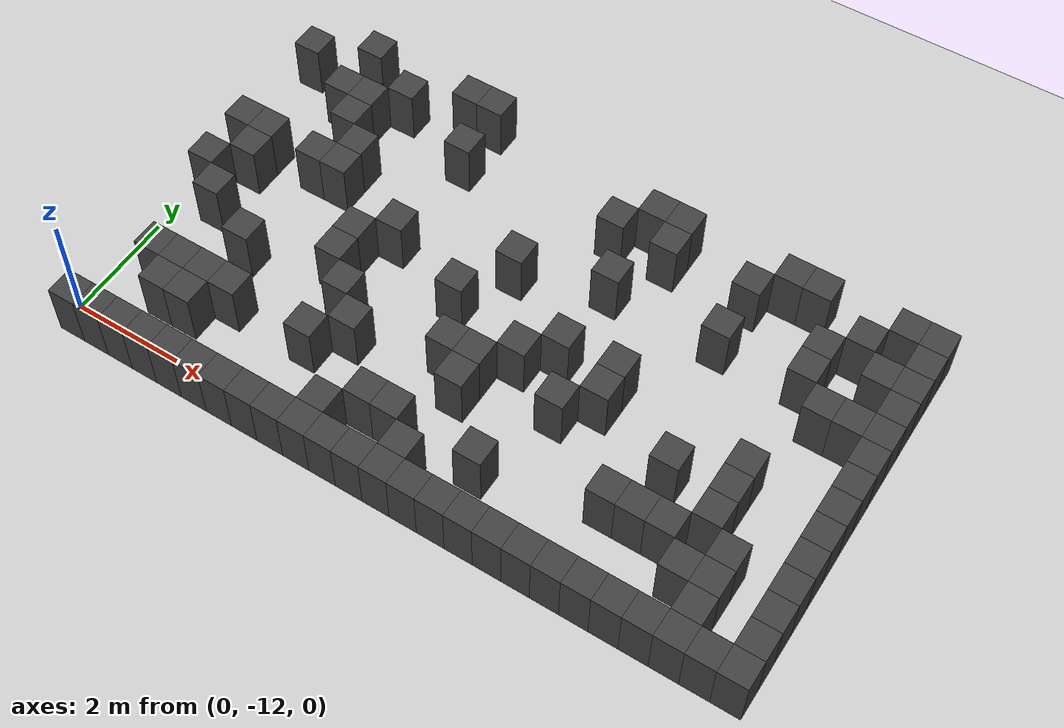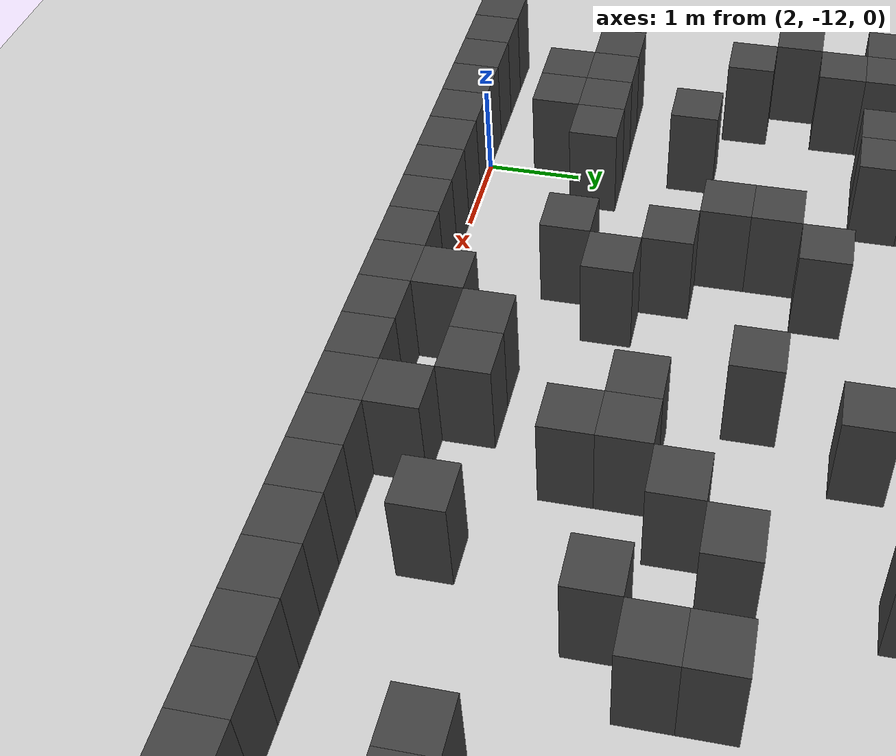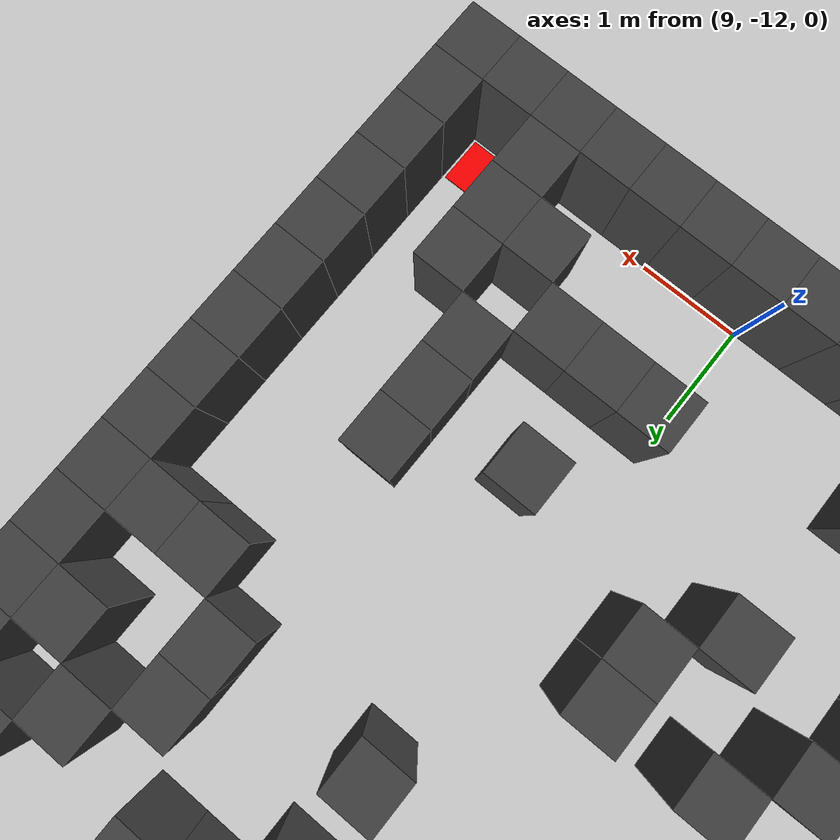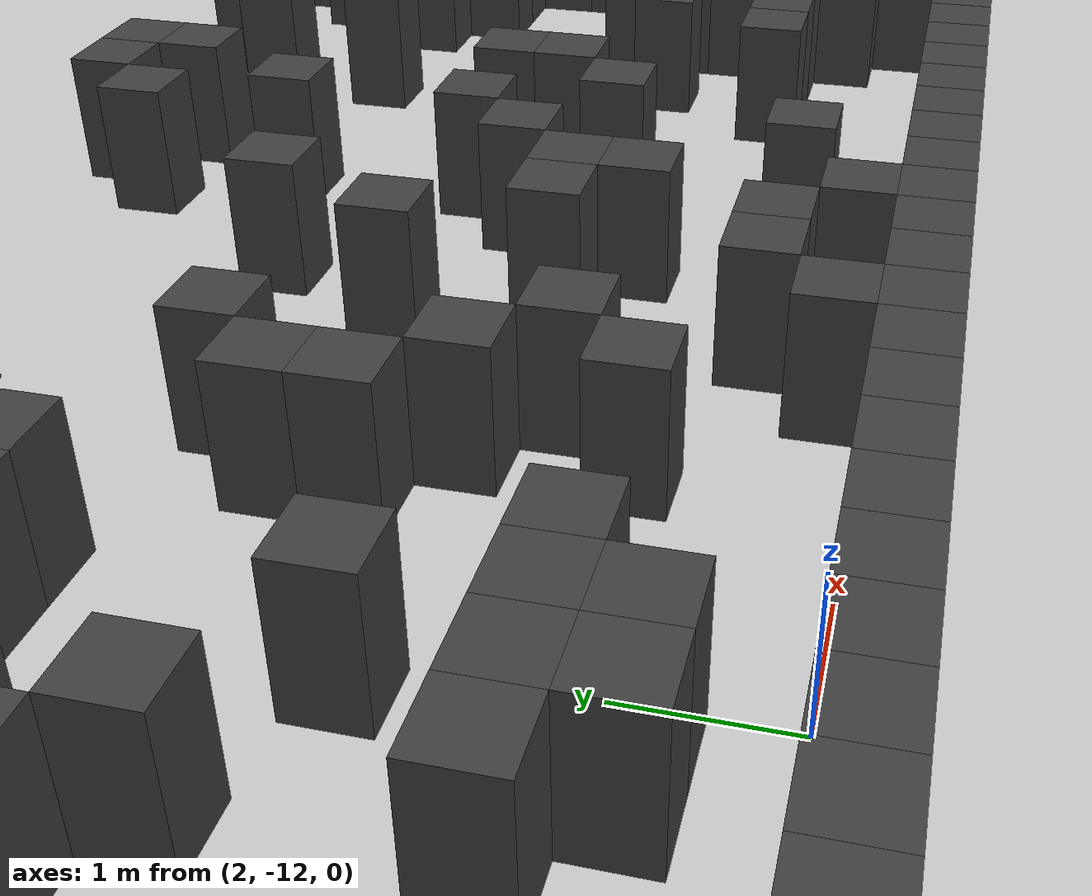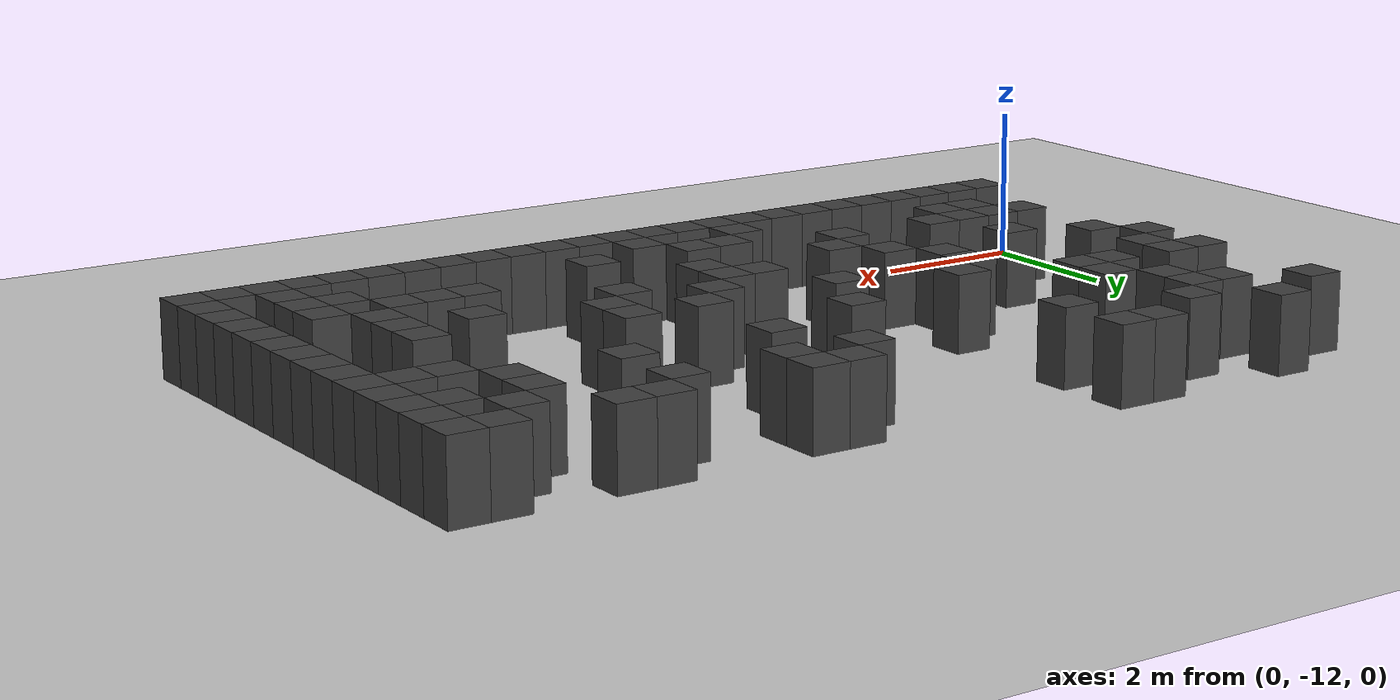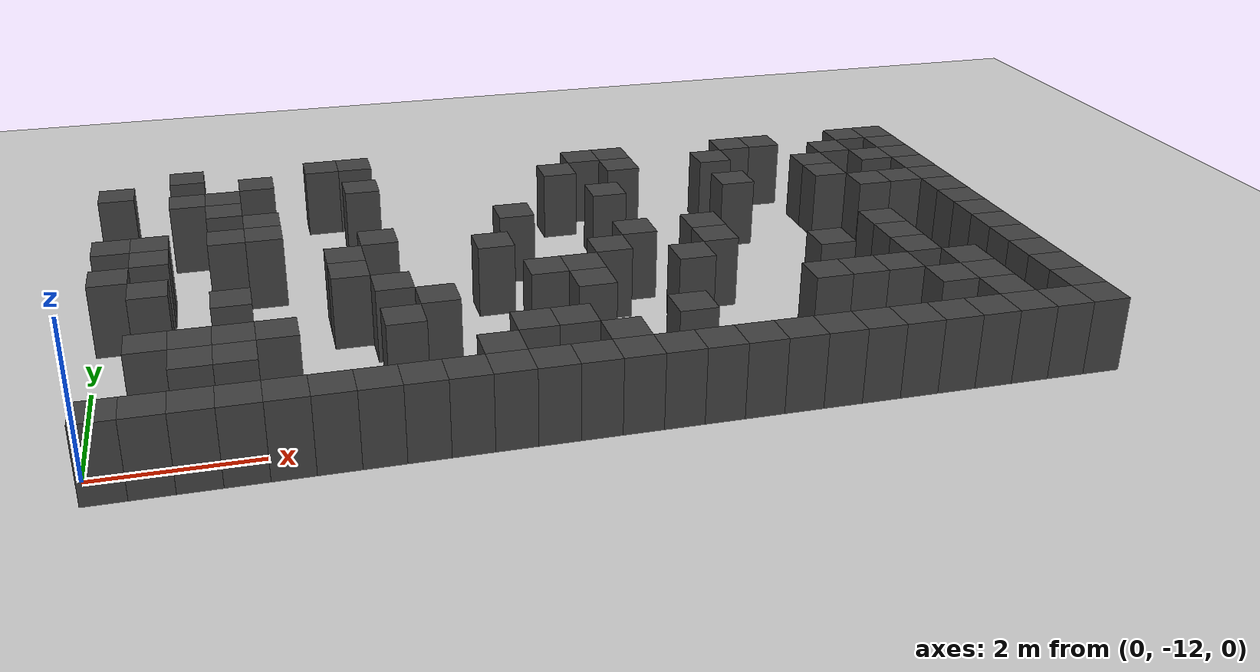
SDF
<sdf version="1.7">
 <world name="map_4225">
  <model name="ground_plane">
   <static>true</static>
   <link name="link">
    <collision name="collision">
     <geometry><plane><normal>0 0 1</normal><size>200 200</size></plane></geometry>
    </collision>
    <visual name="visual">
     <geometry><plane><normal>0 0 1</normal><size>200 200</size></plane></geometry>
     <material><ambient>0.8 0.8 0.8 1</ambient><diffuse>0.8 0.8 0.8 1</diffuse></material>
    </visual>
   </link>
  </model>
  <model name="maze_environment">
   <static>true</static>
   <link name="wall_457">
    <pose>1.250 -5.250 0.500 0 0 0</pose>
    <collision name="col"><geometry><box><size>0.5 0.5 1.0</size></box></geometry></collision>
    <visual name="vis">
     <geometry><box><size>0.5 0.5 1.0</size></box></geometry>
     <material><ambient>0.15 0.15 0.15 1</ambient><diffuse>0.25 0.25 0.25 1</diffuse></material>
    </visual>
   </link>
   <link name="wall_458">
    <pose>3.250 -5.250 0.500 0 0 0</pose>
    <collision name="col"><geometry><box><size>0.5 0.5 1.0</size></box></geometry></collision>
    <visual name="vis">
     <geometry><box><size>0.5 0.5 1.0</size></box></geometry>
     <material><ambient>0.15 0.15 0.15 1</ambient><diffuse>0.25 0.25 0.25 1</diffuse></material>
    </visual>
   </link>
   <link name="wall_459">
    <pose>3.750 -5.250 0.500 0 0 0</pose>
    <collision name="col"><geometry><box><size>0.5 0.5 1.0</size></box></geometry></collision>
    <visual name="vis">
     <geometry><box><size>0.5 0.5 1.0</size></box></geometry>
     <material><ambient>0.15 0.15 0.15 1</ambient><diffuse>0.25 0.25 0.25 1</diffuse></material>
    </visual>
   </link>
   <link name="wall_468">
    <pose>0.250 -5.750 0.500 0 0 0</pose>
    <collision name="col"><geometry><box><size>0.5 0.5 1.0</size></box></geometry></collision>
    <visual name="vis">
     <geometry><box><size>0.5 0.5 1.0</size></box></geometry>
     <material><ambient>0.15 0.15 0.15 1</ambient><diffuse>0.25 0.25 0.25 1</diffuse></material>
    </visual>
   </link>
   <link name="wall_469">
    <pose>2.250 -5.750 0.500 0 0 0</pose>
    <collision name="col"><geometry><box><size>0.5 0.5 1.0</size></box></geometry></collision>
    <visual name="vis">
     <geometry><box><size>0.5 0.5 1.0</size></box></geometry>
     <material><ambient>0.15 0.15 0.15 1</ambient><diffuse>0.25 0.25 0.25 1</diffuse></material>
    </visual>
   </link>
   <link name="wall_470">
    <pose>7.250 -5.750 0.500 0 0 0</pose>
    <collision name="col"><geometry><box><size>0.5 0.5 1.0</size></box></geometry></collision>
    <visual name="vis">
     <geometry><box><size>0.5 0.5 1.0</size></box></geometry>
     <material><ambient>0.15 0.15 0.15 1</ambient><diffuse>0.25 0.25 0.25 1</diffuse></material>
    </visual>
   </link>
   <link name="wall_471">
    <pose>7.750 -5.750 0.500 0 0 0</pose>
    <collision name="col"><geometry><box><size>0.5 0.5 1.0</size></box></geometry></collision>
    <visual name="vis">
     <geometry><box><size>0.5 0.5 1.0</size></box></geometry>
     <material><ambient>0.15 0.15 0.15 1</ambient><diffuse>0.25 0.25 0.25 1</diffuse></material>
    </visual>
   </link>
   <link name="wall_472">
    <pose>9.750 -5.750 0.500 0 0 0</pose>
    <collision name="col"><geometry><box><size>0.5 0.5 1.0</size></box></geometry></collision>
    <visual name="vis">
     <geometry><box><size>0.5 0.5 1.0</size></box></geometry>
     <material><ambient>0.15 0.15 0.15 1</ambient><diffuse>0.25 0.25 0.25 1</diffuse></material>
    </visual>
   </link>
   <link name="wall_473">
    <pose>10.250 -5.750 0.500 0 0 0</pose>
    <collision name="col"><geometry><box><size>0.5 0.5 1.0</size></box></geometry></collision>
    <visual name="vis">
     <geometry><box><size>0.5 0.5 1.0</size></box></geometry>
     <material><ambient>0.15 0.15 0.15 1</ambient><diffuse>0.25 0.25 0.25 1</diffuse></material>
    </visual>
   </link>
   <link name="wall_474">
    <pose>11.750 -5.750 0.500 0 0 0</pose>
    <collision name="col"><geometry><box><size>0.5 0.5 1.0</size></box></geometry></collision>
    <visual name="vis">
     <geometry><box><size>0.5 0.5 1.0</size></box></geometry>
     <material><ambient>0.15 0.15 0.15 1</ambient><diffuse>0.25 0.25 0.25 1</diffuse></material>
    </visual>
   </link>
   <link name="wall_475">
    <pose>12.250 -5.750 0.500 0 0 0</pose>
    <collision name="col"><geometry><box><size>0.5 0.5 1.0</size></box></geometry></collision>
    <visual name="vis">
     <geometry><box><size>0.5 0.5 1.0</size></box></geometry>
     <material><ambient>0.15 0.15 0.15 1</ambient><diffuse>0.25 0.25 0.25 1</diffuse></material>
    </visual>
   </link>
   <link name="wall_484">
    <pose>1.250 -6.250 0.500 0 0 0</pose>
    <collision name="col"><geometry><box><size>0.5 0.5 1.0</size></box></geometry></collision>
    <visual name="vis">
     <geometry><box><size>0.5 0.5 1.0</size></box></geometry>
     <material><ambient>0.15 0.15 0.15 1</ambient><diffuse>0.25 0.25 0.25 1</diffuse></material>
    </visual>
   </link>
   <link name="wall_485">
    <pose>1.750 -6.250 0.500 0 0 0</pose>
    <collision name="col"><geometry><box><size>0.5 0.5 1.0</size></box></geometry></collision>
    <visual name="vis">
     <geometry><box><size>0.5 0.5 1.0</size></box></geometry>
     <material><ambient>0.15 0.15 0.15 1</ambient><diffuse>0.25 0.25 0.25 1</diffuse></material>
    </visual>
   </link>
   <link name="wall_486">
    <pose>3.750 -6.250 0.500 0 0 0</pose>
    <collision name="col"><geometry><box><size>0.5 0.5 1.0</size></box></geometry></collision>
    <visual name="vis">
     <geometry><box><size>0.5 0.5 1.0</size></box></geometry>
     <material><ambient>0.15 0.15 0.15 1</ambient><diffuse>0.25 0.25 0.25 1</diffuse></material>
    </visual>
   </link>
   <link name="wall_487">
    <pose>6.750 -6.250 0.500 0 0 0</pose>
    <collision name="col"><geometry><box><size>0.5 0.5 1.0</size></box></geometry></collision>
    <visual name="vis">
     <geometry><box><size>0.5 0.5 1.0</size></box></geometry>
     <material><ambient>0.15 0.15 0.15 1</ambient><diffuse>0.25 0.25 0.25 1</diffuse></material>
    </visual>
   </link>
   <link name="wall_488">
    <pose>7.750 -6.250 0.500 0 0 0</pose>
    <collision name="col"><geometry><box><size>0.5 0.5 1.0</size></box></geometry></collision>
    <visual name="vis">
     <geometry><box><size>0.5 0.5 1.0</size></box></geometry>
     <material><ambient>0.15 0.15 0.15 1</ambient><diffuse>0.25 0.25 0.25 1</diffuse></material>
    </visual>
   </link>
   <link name="wall_489">
    <pose>9.250 -6.250 0.500 0 0 0</pose>
    <collision name="col"><geometry><box><size>0.5 0.5 1.0</size></box></geometry></collision>
    <visual name="vis">
     <geometry><box><size>0.5 0.5 1.0</size></box></geometry>
     <material><ambient>0.15 0.15 0.15 1</ambient><diffuse>0.25 0.25 0.25 1</diffuse></material>
    </visual>
   </link>
   <link name="wall_490">
    <pose>11.250 -6.250 0.500 0 0 0</pose>
    <collision name="col"><geometry><box><size>0.5 0.5 1.0</size></box></geometry></collision>
    <visual name="vis">
     <geometry><box><size>0.5 0.5 1.0</size></box></geometry>
     <material><ambient>0.15 0.15 0.15 1</ambient><diffuse>0.25 0.25 0.25 1</diffuse></material>
    </visual>
   </link>
   <link name="wall_491">
    <pose>12.250 -6.250 0.500 0 0 0</pose>
    <collision name="col"><geometry><box><size>0.5 0.5 1.0</size></box></geometry></collision>
    <visual name="vis">
     <geometry><box><size>0.5 0.5 1.0</size></box></geometry>
     <material><ambient>0.15 0.15 0.15 1</ambient><diffuse>0.25 0.25 0.25 1</diffuse></material>
    </visual>
   </link>
   <link name="wall_497">
    <pose>1.750 -6.750 0.500 0 0 0</pose>
    <collision name="col"><geometry><box><size>0.5 0.5 1.0</size></box></geometry></collision>
    <visual name="vis">
     <geometry><box><size>0.5 0.5 1.0</size></box></geometry>
     <material><ambient>0.15 0.15 0.15 1</ambient><diffuse>0.25 0.25 0.25 1</diffuse></material>
    </visual>
   </link>
   <link name="wall_498">
    <pose>10.750 -6.750 0.500 0 0 0</pose>
    <collision name="col"><geometry><box><size>0.5 0.5 1.0</size></box></geometry></collision>
    <visual name="vis">
     <geometry><box><size>0.5 0.5 1.0</size></box></geometry>
     <material><ambient>0.15 0.15 0.15 1</ambient><diffuse>0.25 0.25 0.25 1</diffuse></material>
    </visual>
   </link>
   <link name="wall_499">
    <pose>11.750 -6.750 0.500 0 0 0</pose>
    <collision name="col"><geometry><box><size>0.5 0.5 1.0</size></box></geometry></collision>
    <visual name="vis">
     <geometry><box><size>0.5 0.5 1.0</size></box></geometry>
     <material><ambient>0.15 0.15 0.15 1</ambient><diffuse>0.25 0.25 0.25 1</diffuse></material>
    </visual>
   </link>
   <link name="wall_500">
    <pose>12.250 -6.750 0.500 0 0 0</pose>
    <collision name="col"><geometry><box><size>0.5 0.5 1.0</size></box></geometry></collision>
    <visual name="vis">
     <geometry><box><size>0.5 0.5 1.0</size></box></geometry>
     <material><ambient>0.15 0.15 0.15 1</ambient><diffuse>0.25 0.25 0.25 1</diffuse></material>
    </visual>
   </link>
   <link name="wall_503">
    <pose>2.250 -7.250 0.500 0 0 0</pose>
    <collision name="col"><geometry><box><size>0.5 0.5 1.0</size></box></geometry></collision>
    <visual name="vis">
     <geometry><box><size>0.5 0.5 1.0</size></box></geometry>
     <material><ambient>0.15 0.15 0.15 1</ambient><diffuse>0.25 0.25 0.25 1</diffuse></material>
    </visual>
   </link>
   <link name="wall_504">
    <pose>7.250 -7.250 0.500 0 0 0</pose>
    <collision name="col"><geometry><box><size>0.5 0.5 1.0</size></box></geometry></collision>
    <visual name="vis">
     <geometry><box><size>0.5 0.5 1.0</size></box></geometry>
     <material><ambient>0.15 0.15 0.15 1</ambient><diffuse>0.25 0.25 0.25 1</diffuse></material>
    </visual>
   </link>
   <link name="wall_505">
    <pose>9.250 -7.250 0.500 0 0 0</pose>
    <collision name="col"><geometry><box><size>0.5 0.5 1.0</size></box></geometry></collision>
    <visual name="vis">
     <geometry><box><size>0.5 0.5 1.0</size></box></geometry>
     <material><ambient>0.15 0.15 0.15 1</ambient><diffuse>0.25 0.25 0.25 1</diffuse></material>
    </visual>
   </link>
   <link name="wall_506">
    <pose>10.750 -7.250 0.500 0 0 0</pose>
    <collision name="col"><geometry><box><size>0.5 0.5 1.0</size></box></geometry></collision>
    <visual name="vis">
     <geometry><box><size>0.5 0.5 1.0</size></box></geometry>
     <material><ambient>0.15 0.15 0.15 1</ambient><diffuse>0.25 0.25 0.25 1</diffuse></material>
    </visual>
   </link>
   <link name="wall_507">
    <pose>12.250 -7.250 0.500 0 0 0</pose>
    <collision name="col"><geometry><box><size>0.5 0.5 1.0</size></box></geometry></collision>
    <visual name="vis">
     <geometry><box><size>0.5 0.5 1.0</size></box></geometry>
     <material><ambient>0.15 0.15 0.15 1</ambient><diffuse>0.25 0.25 0.25 1</diffuse></material>
    </visual>
   </link>
   <link name="wall_512">
    <pose>0.250 -7.750 0.500 0 0 0</pose>
    <collision name="col"><geometry><box><size>0.5 0.5 1.0</size></box></geometry></collision>
    <visual name="vis">
     <geometry><box><size>0.5 0.5 1.0</size></box></geometry>
     <material><ambient>0.15 0.15 0.15 1</ambient><diffuse>0.25 0.25 0.25 1</diffuse></material>
    </visual>
   </link>
   <link name="wall_513">
    <pose>0.750 -7.750 0.500 0 0 0</pose>
    <collision name="col"><geometry><box><size>0.5 0.5 1.0</size></box></geometry></collision>
    <visual name="vis">
     <geometry><box><size>0.5 0.5 1.0</size></box></geometry>
     <material><ambient>0.15 0.15 0.15 1</ambient><diffuse>0.25 0.25 0.25 1</diffuse></material>
    </visual>
   </link>
   <link name="wall_514">
    <pose>1.750 -7.750 0.500 0 0 0</pose>
    <collision name="col"><geometry><box><size>0.5 0.5 1.0</size></box></geometry></collision>
    <visual name="vis">
     <geometry><box><size>0.5 0.5 1.0</size></box></geometry>
     <material><ambient>0.15 0.15 0.15 1</ambient><diffuse>0.25 0.25 0.25 1</diffuse></material>
    </visual>
   </link>
   <link name="wall_515">
    <pose>2.250 -7.750 0.500 0 0 0</pose>
    <collision name="col"><geometry><box><size>0.5 0.5 1.0</size></box></geometry></collision>
    <visual name="vis">
     <geometry><box><size>0.5 0.5 1.0</size></box></geometry>
     <material><ambient>0.15 0.15 0.15 1</ambient><diffuse>0.25 0.25 0.25 1</diffuse></material>
    </visual>
   </link>
   <link name="wall_516">
    <pose>5.750 -7.750 0.500 0 0 0</pose>
    <collision name="col"><geometry><box><size>0.5 0.5 1.0</size></box></geometry></collision>
    <visual name="vis">
     <geometry><box><size>0.5 0.5 1.0</size></box></geometry>
     <material><ambient>0.15 0.15 0.15 1</ambient><diffuse>0.25 0.25 0.25 1</diffuse></material>
    </visual>
   </link>
   <link name="wall_517">
    <pose>11.250 -7.750 0.500 0 0 0</pose>
    <collision name="col"><geometry><box><size>0.5 0.5 1.0</size></box></geometry></collision>
    <visual name="vis">
     <geometry><box><size>0.5 0.5 1.0</size></box></geometry>
     <material><ambient>0.15 0.15 0.15 1</ambient><diffuse>0.25 0.25 0.25 1</diffuse></material>
    </visual>
   </link>
   <link name="wall_518">
    <pose>11.750 -7.750 0.500 0 0 0</pose>
    <collision name="col"><geometry><box><size>0.5 0.5 1.0</size></box></geometry></collision>
    <visual name="vis">
     <geometry><box><size>0.5 0.5 1.0</size></box></geometry>
     <material><ambient>0.15 0.15 0.15 1</ambient><diffuse>0.25 0.25 0.25 1</diffuse></material>
    </visual>
   </link>
   <link name="wall_519">
    <pose>12.250 -7.750 0.500 0 0 0</pose>
    <collision name="col"><geometry><box><size>0.5 0.5 1.0</size></box></geometry></collision>
    <visual name="vis">
     <geometry><box><size>0.5 0.5 1.0</size></box></geometry>
     <material><ambient>0.15 0.15 0.15 1</ambient><diffuse>0.25 0.25 0.25 1</diffuse></material>
    </visual>
   </link>
   <link name="wall_526">
    <pose>0.750 -8.250 0.500 0 0 0</pose>
    <collision name="col"><geometry><box><size>0.5 0.5 1.0</size></box></geometry></collision>
    <visual name="vis">
     <geometry><box><size>0.5 0.5 1.0</size></box></geometry>
     <material><ambient>0.15 0.15 0.15 1</ambient><diffuse>0.25 0.25 0.25 1</diffuse></material>
    </visual>
   </link>
   <link name="wall_527">
    <pose>3.750 -8.250 0.500 0 0 0</pose>
    <collision name="col"><geometry><box><size>0.5 0.5 1.0</size></box></geometry></collision>
    <visual name="vis">
     <geometry><box><size>0.5 0.5 1.0</size></box></geometry>
     <material><ambient>0.15 0.15 0.15 1</ambient><diffuse>0.25 0.25 0.25 1</diffuse></material>
    </visual>
   </link>
   <link name="wall_528">
    <pose>12.250 -8.250 0.500 0 0 0</pose>
    <collision name="col"><geometry><box><size>0.5 0.5 1.0</size></box></geometry></collision>
    <visual name="vis">
     <geometry><box><size>0.5 0.5 1.0</size></box></geometry>
     <material><ambient>0.15 0.15 0.15 1</ambient><diffuse>0.25 0.25 0.25 1</diffuse></material>
    </visual>
   </link>
   <link name="wall_535">
    <pose>0.250 -8.750 0.500 0 0 0</pose>
    <collision name="col"><geometry><box><size>0.5 0.5 1.0</size></box></geometry></collision>
    <visual name="vis">
     <geometry><box><size>0.5 0.5 1.0</size></box></geometry>
     <material><ambient>0.15 0.15 0.15 1</ambient><diffuse>0.25 0.25 0.25 1</diffuse></material>
    </visual>
   </link>
   <link name="wall_536">
    <pose>3.250 -8.750 0.500 0 0 0</pose>
    <collision name="col"><geometry><box><size>0.5 0.5 1.0</size></box></geometry></collision>
    <visual name="vis">
     <geometry><box><size>0.5 0.5 1.0</size></box></geometry>
     <material><ambient>0.15 0.15 0.15 1</ambient><diffuse>0.25 0.25 0.25 1</diffuse></material>
    </visual>
   </link>
   <link name="wall_537">
    <pose>5.250 -8.750 0.500 0 0 0</pose>
    <collision name="col"><geometry><box><size>0.5 0.5 1.0</size></box></geometry></collision>
    <visual name="vis">
     <geometry><box><size>0.5 0.5 1.0</size></box></geometry>
     <material><ambient>0.15 0.15 0.15 1</ambient><diffuse>0.25 0.25 0.25 1</diffuse></material>
    </visual>
   </link>
   <link name="wall_538">
    <pose>7.250 -8.750 0.500 0 0 0</pose>
    <collision name="col"><geometry><box><size>0.5 0.5 1.0</size></box></geometry></collision>
    <visual name="vis">
     <geometry><box><size>0.5 0.5 1.0</size></box></geometry>
     <material><ambient>0.15 0.15 0.15 1</ambient><diffuse>0.25 0.25 0.25 1</diffuse></material>
    </visual>
   </link>
   <link name="wall_539">
    <pose>8.250 -8.750 0.500 0 0 0</pose>
    <collision name="col"><geometry><box><size>0.5 0.5 1.0</size></box></geometry></collision>
    <visual name="vis">
     <geometry><box><size>0.5 0.5 1.0</size></box></geometry>
     <material><ambient>0.15 0.15 0.15 1</ambient><diffuse>0.25 0.25 0.25 1</diffuse></material>
    </visual>
   </link>
   <link name="wall_540">
    <pose>12.250 -8.750 0.500 0 0 0</pose>
    <collision name="col"><geometry><box><size>0.5 0.5 1.0</size></box></geometry></collision>
    <visual name="vis">
     <geometry><box><size>0.5 0.5 1.0</size></box></geometry>
     <material><ambient>0.15 0.15 0.15 1</ambient><diffuse>0.25 0.25 0.25 1</diffuse></material>
    </visual>
   </link>
   <link name="wall_550">
    <pose>0.750 -9.250 0.500 0 0 0</pose>
    <collision name="col"><geometry><box><size>0.5 0.5 1.0</size></box></geometry></collision>
    <visual name="vis">
     <geometry><box><size>0.5 0.5 1.0</size></box></geometry>
     <material><ambient>0.15 0.15 0.15 1</ambient><diffuse>0.25 0.25 0.25 1</diffuse></material>
    </visual>
   </link>
   <link name="wall_551">
    <pose>3.250 -9.250 0.500 0 0 0</pose>
    <collision name="col"><geometry><box><size>0.5 0.5 1.0</size></box></geometry></collision>
    <visual name="vis">
     <geometry><box><size>0.5 0.5 1.0</size></box></geometry>
     <material><ambient>0.15 0.15 0.15 1</ambient><diffuse>0.25 0.25 0.25 1</diffuse></material>
    </visual>
   </link>
   <link name="wall_552">
    <pose>6.750 -9.250 0.500 0 0 0</pose>
    <collision name="col"><geometry><box><size>0.5 0.5 1.0</size></box></geometry></collision>
    <visual name="vis">
     <geometry><box><size>0.5 0.5 1.0</size></box></geometry>
     <material><ambient>0.15 0.15 0.15 1</ambient><diffuse>0.25 0.25 0.25 1</diffuse></material>
    </visual>
   </link>
   <link name="wall_553">
    <pose>8.250 -9.250 0.500 0 0 0</pose>
    <collision name="col"><geometry><box><size>0.5 0.5 1.0</size></box></geometry></collision>
    <visual name="vis">
     <geometry><box><size>0.5 0.5 1.0</size></box></geometry>
     <material><ambient>0.15 0.15 0.15 1</ambient><diffuse>0.25 0.25 0.25 1</diffuse></material>
    </visual>
   </link>
   <link name="wall_554">
    <pose>10.750 -9.250 0.500 0 0 0</pose>
    <collision name="col"><geometry><box><size>0.5 0.5 1.0</size></box></geometry></collision>
    <visual name="vis">
     <geometry><box><size>0.5 0.5 1.0</size></box></geometry>
     <material><ambient>0.15 0.15 0.15 1</ambient><diffuse>0.25 0.25 0.25 1</diffuse></material>
    </visual>
   </link>
   <link name="wall_555">
    <pose>12.250 -9.250 0.500 0 0 0</pose>
    <collision name="col"><geometry><box><size>0.5 0.5 1.0</size></box></geometry></collision>
    <visual name="vis">
     <geometry><box><size>0.5 0.5 1.0</size></box></geometry>
     <material><ambient>0.15 0.15 0.15 1</ambient><diffuse>0.25 0.25 0.25 1</diffuse></material>
    </visual>
   </link>
   <link name="wall_562">
    <pose>1.750 -9.750 0.500 0 0 0</pose>
    <collision name="col"><geometry><box><size>0.5 0.5 1.0</size></box></geometry></collision>
    <visual name="vis">
     <geometry><box><size>0.5 0.5 1.0</size></box></geometry>
     <material><ambient>0.15 0.15 0.15 1</ambient><diffuse>0.25 0.25 0.25 1</diffuse></material>
    </visual>
   </link>
   <link name="wall_563">
    <pose>3.750 -9.750 0.500 0 0 0</pose>
    <collision name="col"><geometry><box><size>0.5 0.5 1.0</size></box></geometry></collision>
    <visual name="vis">
     <geometry><box><size>0.5 0.5 1.0</size></box></geometry>
     <material><ambient>0.15 0.15 0.15 1</ambient><diffuse>0.25 0.25 0.25 1</diffuse></material>
    </visual>
   </link>
   <link name="wall_564">
    <pose>5.750 -9.750 0.500 0 0 0</pose>
    <collision name="col"><geometry><box><size>0.5 0.5 1.0</size></box></geometry></collision>
    <visual name="vis">
     <geometry><box><size>0.5 0.5 1.0</size></box></geometry>
     <material><ambient>0.15 0.15 0.15 1</ambient><diffuse>0.25 0.25 0.25 1</diffuse></material>
    </visual>
   </link>
   <link name="wall_565">
    <pose>6.250 -9.750 0.500 0 0 0</pose>
    <collision name="col"><geometry><box><size>0.5 0.5 1.0</size></box></geometry></collision>
    <visual name="vis">
     <geometry><box><size>0.5 0.5 1.0</size></box></geometry>
     <material><ambient>0.15 0.15 0.15 1</ambient><diffuse>0.25 0.25 0.25 1</diffuse></material>
    </visual>
   </link>
   <link name="wall_566">
    <pose>7.750 -9.750 0.500 0 0 0</pose>
    <collision name="col"><geometry><box><size>0.5 0.5 1.0</size></box></geometry></collision>
    <visual name="vis">
     <geometry><box><size>0.5 0.5 1.0</size></box></geometry>
     <material><ambient>0.15 0.15 0.15 1</ambient><diffuse>0.25 0.25 0.25 1</diffuse></material>
    </visual>
   </link>
   <link name="wall_567">
    <pose>9.750 -9.750 0.500 0 0 0</pose>
    <collision name="col"><geometry><box><size>0.5 0.5 1.0</size></box></geometry></collision>
    <visual name="vis">
     <geometry><box><size>0.5 0.5 1.0</size></box></geometry>
     <material><ambient>0.15 0.15 0.15 1</ambient><diffuse>0.25 0.25 0.25 1</diffuse></material>
    </visual>
   </link>
   <link name="wall_568">
    <pose>10.750 -9.750 0.500 0 0 0</pose>
    <collision name="col"><geometry><box><size>0.5 0.5 1.0</size></box></geometry></collision>
    <visual name="vis">
     <geometry><box><size>0.5 0.5 1.0</size></box></geometry>
     <material><ambient>0.15 0.15 0.15 1</ambient><diffuse>0.25 0.25 0.25 1</diffuse></material>
    </visual>
   </link>
   <link name="wall_569">
    <pose>12.250 -9.750 0.500 0 0 0</pose>
    <collision name="col"><geometry><box><size>0.5 0.5 1.0</size></box></geometry></collision>
    <visual name="vis">
     <geometry><box><size>0.5 0.5 1.0</size></box></geometry>
     <material><ambient>0.15 0.15 0.15 1</ambient><diffuse>0.25 0.25 0.25 1</diffuse></material>
    </visual>
   </link>
   <link name="wall_574">
    <pose>4.250 -10.250 0.500 0 0 0</pose>
    <collision name="col"><geometry><box><size>0.5 0.5 1.0</size></box></geometry></collision>
    <visual name="vis">
     <geometry><box><size>0.5 0.5 1.0</size></box></geometry>
     <material><ambient>0.15 0.15 0.15 1</ambient><diffuse>0.25 0.25 0.25 1</diffuse></material>
    </visual>
   </link>
   <link name="wall_575">
    <pose>6.250 -10.250 0.500 0 0 0</pose>
    <collision name="col"><geometry><box><size>0.5 0.5 1.0</size></box></geometry></collision>
    <visual name="vis">
     <geometry><box><size>0.5 0.5 1.0</size></box></geometry>
     <material><ambient>0.15 0.15 0.15 1</ambient><diffuse>0.25 0.25 0.25 1</diffuse></material>
    </visual>
   </link>
   <link name="wall_576">
    <pose>10.750 -10.250 0.500 0 0 0</pose>
    <collision name="col"><geometry><box><size>0.5 0.5 1.0</size></box></geometry></collision>
    <visual name="vis">
     <geometry><box><size>0.5 0.5 1.0</size></box></geometry>
     <material><ambient>0.15 0.15 0.15 1</ambient><diffuse>0.25 0.25 0.25 1</diffuse></material>
    </visual>
   </link>
   <link name="wall_577">
    <pose>12.250 -10.250 0.500 0 0 0</pose>
    <collision name="col"><geometry><box><size>0.5 0.5 1.0</size></box></geometry></collision>
    <visual name="vis">
     <geometry><box><size>0.5 0.5 1.0</size></box></geometry>
     <material><ambient>0.15 0.15 0.15 1</ambient><diffuse>0.25 0.25 0.25 1</diffuse></material>
    </visual>
   </link>
   <link name="wall_583">
    <pose>0.750 -10.750 0.500 0 0 0</pose>
    <collision name="col"><geometry><box><size>0.5 0.5 1.0</size></box></geometry></collision>
    <visual name="vis">
     <geometry><box><size>0.5 0.5 1.0</size></box></geometry>
     <material><ambient>0.15 0.15 0.15 1</ambient><diffuse>0.25 0.25 0.25 1</diffuse></material>
    </visual>
   </link>
   <link name="wall_584">
    <pose>1.250 -10.750 0.500 0 0 0</pose>
    <collision name="col"><geometry><box><size>0.5 0.5 1.0</size></box></geometry></collision>
    <visual name="vis">
     <geometry><box><size>0.5 0.5 1.0</size></box></geometry>
     <material><ambient>0.15 0.15 0.15 1</ambient><diffuse>0.25 0.25 0.25 1</diffuse></material>
    </visual>
   </link>
   <link name="wall_585">
    <pose>1.750 -10.750 0.500 0 0 0</pose>
    <collision name="col"><geometry><box><size>0.5 0.5 1.0</size></box></geometry></collision>
    <visual name="vis">
     <geometry><box><size>0.5 0.5 1.0</size></box></geometry>
     <material><ambient>0.15 0.15 0.15 1</ambient><diffuse>0.25 0.25 0.25 1</diffuse></material>
    </visual>
   </link>
   <link name="wall_586">
    <pose>2.250 -10.750 0.500 0 0 0</pose>
    <collision name="col"><geometry><box><size>0.5 0.5 1.0</size></box></geometry></collision>
    <visual name="vis">
     <geometry><box><size>0.5 0.5 1.0</size></box></geometry>
     <material><ambient>0.15 0.15 0.15 1</ambient><diffuse>0.25 0.25 0.25 1</diffuse></material>
    </visual>
   </link>
   <link name="wall_587">
    <pose>3.750 -10.750 0.500 0 0 0</pose>
    <collision name="col"><geometry><box><size>0.5 0.5 1.0</size></box></geometry></collision>
    <visual name="vis">
     <geometry><box><size>0.5 0.5 1.0</size></box></geometry>
     <material><ambient>0.15 0.15 0.15 1</ambient><diffuse>0.25 0.25 0.25 1</diffuse></material>
    </visual>
   </link>
   <link name="wall_588">
    <pose>9.250 -10.750 0.500 0 0 0</pose>
    <collision name="col"><geometry><box><size>0.5 0.5 1.0</size></box></geometry></collision>
    <visual name="vis">
     <geometry><box><size>0.5 0.5 1.0</size></box></geometry>
     <material><ambient>0.15 0.15 0.15 1</ambient><diffuse>0.25 0.25 0.25 1</diffuse></material>
    </visual>
   </link>
   <link name="wall_589">
    <pose>9.750 -10.750 0.500 0 0 0</pose>
    <collision name="col"><geometry><box><size>0.5 0.5 1.0</size></box></geometry></collision>
    <visual name="vis">
     <geometry><box><size>0.5 0.5 1.0</size></box></geometry>
     <material><ambient>0.15 0.15 0.15 1</ambient><diffuse>0.25 0.25 0.25 1</diffuse></material>
    </visual>
   </link>
   <link name="wall_590">
    <pose>10.250 -10.750 0.500 0 0 0</pose>
    <collision name="col"><geometry><box><size>0.5 0.5 1.0</size></box></geometry></collision>
    <visual name="vis">
     <geometry><box><size>0.5 0.5 1.0</size></box></geometry>
     <material><ambient>0.15 0.15 0.15 1</ambient><diffuse>0.25 0.25 0.25 1</diffuse></material>
    </visual>
   </link>
   <link name="wall_591">
    <pose>11.250 -10.750 0.500 0 0 0</pose>
    <collision name="col"><geometry><box><size>0.5 0.5 1.0</size></box></geometry></collision>
    <visual name="vis">
     <geometry><box><size>0.5 0.5 1.0</size></box></geometry>
     <material><ambient>0.15 0.15 0.15 1</ambient><diffuse>0.25 0.25 0.25 1</diffuse></material>
    </visual>
   </link>
   <link name="wall_592">
    <pose>12.250 -10.750 0.500 0 0 0</pose>
    <collision name="col"><geometry><box><size>0.5 0.5 1.0</size></box></geometry></collision>
    <visual name="vis">
     <geometry><box><size>0.5 0.5 1.0</size></box></geometry>
     <material><ambient>0.15 0.15 0.15 1</ambient><diffuse>0.25 0.25 0.25 1</diffuse></material>
    </visual>
   </link>
   <link name="wall_595">
    <pose>1.250 -11.250 0.500 0 0 0</pose>
    <collision name="col"><geometry><box><size>0.5 0.5 1.0</size></box></geometry></collision>
    <visual name="vis">
     <geometry><box><size>0.5 0.5 1.0</size></box></geometry>
     <material><ambient>0.15 0.15 0.15 1</ambient><diffuse>0.25 0.25 0.25 1</diffuse></material>
    </visual>
   </link>
   <link name="wall_596">
    <pose>1.750 -11.250 0.500 0 0 0</pose>
    <collision name="col"><geometry><box><size>0.5 0.5 1.0</size></box></geometry></collision>
    <visual name="vis">
     <geometry><box><size>0.5 0.5 1.0</size></box></geometry>
     <material><ambient>0.15 0.15 0.15 1</ambient><diffuse>0.25 0.25 0.25 1</diffuse></material>
    </visual>
   </link>
   <link name="wall_597">
    <pose>5.250 -11.250 0.500 0 0 0</pose>
    <collision name="col"><geometry><box><size>0.5 0.5 1.0</size></box></geometry></collision>
    <visual name="vis">
     <geometry><box><size>0.5 0.5 1.0</size></box></geometry>
     <material><ambient>0.15 0.15 0.15 1</ambient><diffuse>0.25 0.25 0.25 1</diffuse></material>
    </visual>
   </link>
   <link name="wall_598">
    <pose>5.750 -11.250 0.500 0 0 0</pose>
    <collision name="col"><geometry><box><size>0.5 0.5 1.0</size></box></geometry></collision>
    <visual name="vis">
     <geometry><box><size>0.5 0.5 1.0</size></box></geometry>
     <material><ambient>0.15 0.15 0.15 1</ambient><diffuse>0.25 0.25 0.25 1</diffuse></material>
    </visual>
   </link>
   <link name="wall_599">
    <pose>7.250 -11.250 0.500 0 0 0</pose>
    <collision name="col"><geometry><box><size>0.5 0.5 1.0</size></box></geometry></collision>
    <visual name="vis">
     <geometry><box><size>0.5 0.5 1.0</size></box></geometry>
     <material><ambient>0.15 0.15 0.15 1</ambient><diffuse>0.25 0.25 0.25 1</diffuse></material>
    </visual>
   </link>
   <link name="wall_600">
    <pose>10.750 -11.250 0.500 0 0 0</pose>
    <collision name="col"><geometry><box><size>0.5 0.5 1.0</size></box></geometry></collision>
    <visual name="vis">
     <geometry><box><size>0.5 0.5 1.0</size></box></geometry>
     <material><ambient>0.15 0.15 0.15 1</ambient><diffuse>0.25 0.25 0.25 1</diffuse></material>
    </visual>
   </link>
   <link name="wall_601">
    <pose>11.250 -11.250 0.500 0 0 0</pose>
    <collision name="col"><geometry><box><size>0.5 0.5 1.0</size></box></geometry></collision>
    <visual name="vis">
     <geometry><box><size>0.5 0.5 1.0</size></box></geometry>
     <material><ambient>0.15 0.15 0.15 1</ambient><diffuse>0.25 0.25 0.25 1</diffuse></material>
    </visual>
   </link>
   <link name="wall_602">
    <pose>12.250 -11.250 0.500 0 0 0</pose>
    <collision name="col"><geometry><box><size>0.5 0.5 1.0</size></box></geometry></collision>
    <visual name="vis">
     <geometry><box><size>0.5 0.5 1.0</size></box></geometry>
     <material><ambient>0.15 0.15 0.15 1</ambient><diffuse>0.25 0.25 0.25 1</diffuse></material>
    </visual>
   </link>
   <link name="wall_612">
    <pose>4.750 -11.750 0.500 0 0 0</pose>
    <collision name="col"><geometry><box><size>0.5 0.5 1.0</size></box></geometry></collision>
    <visual name="vis">
     <geometry><box><size>0.5 0.5 1.0</size></box></geometry>
     <material><ambient>0.15 0.15 0.15 1</ambient><diffuse>0.25 0.25 0.25 1</diffuse></material>
    </visual>
   </link>
   <link name="wall_613">
    <pose>6.250 -11.750 0.500 0 0 0</pose>
    <collision name="col"><geometry><box><size>0.5 0.5 1.0</size></box></geometry></collision>
    <visual name="vis">
     <geometry><box><size>0.5 0.5 1.0</size></box></geometry>
     <material><ambient>0.15 0.15 0.15 1</ambient><diffuse>0.25 0.25 0.25 1</diffuse></material>
    </visual>
   </link>
   <link name="wall_614">
    <pose>11.250 -11.750 0.500 0 0 0</pose>
    <collision name="col"><geometry><box><size>0.5 0.5 1.0</size></box></geometry></collision>
    <visual name="vis">
     <geometry><box><size>0.5 0.5 1.0</size></box></geometry>
     <material><ambient>0.15 0.15 0.15 1</ambient><diffuse>0.25 0.25 0.25 1</diffuse></material>
    </visual>
   </link>
   <link name="wall_615">
    <pose>12.250 -11.750 0.500 0 0 0</pose>
    <collision name="col"><geometry><box><size>0.5 0.5 1.0</size></box></geometry></collision>
    <visual name="vis">
     <geometry><box><size>0.5 0.5 1.0</size></box></geometry>
     <material><ambient>0.15 0.15 0.15 1</ambient><diffuse>0.25 0.25 0.25 1</diffuse></material>
    </visual>
   </link>
   <link name="wall_641">
    <pose>0.250 -12.250 0.500 0 0 0</pose>
    <collision name="col"><geometry><box><size>0.5 0.5 1.0</size></box></geometry></collision>
    <visual name="vis">
     <geometry><box><size>0.5 0.5 1.0</size></box></geometry>
     <material><ambient>0.15 0.15 0.15 1</ambient><diffuse>0.25 0.25 0.25 1</diffuse></material>
    </visual>
   </link>
   <link name="wall_642">
    <pose>0.750 -12.250 0.500 0 0 0</pose>
    <collision name="col"><geometry><box><size>0.5 0.5 1.0</size></box></geometry></collision>
    <visual name="vis">
     <geometry><box><size>0.5 0.5 1.0</size></box></geometry>
     <material><ambient>0.15 0.15 0.15 1</ambient><diffuse>0.25 0.25 0.25 1</diffuse></material>
    </visual>
   </link>
   <link name="wall_643">
    <pose>1.250 -12.250 0.500 0 0 0</pose>
    <collision name="col"><geometry><box><size>0.5 0.5 1.0</size></box></geometry></collision>
    <visual name="vis">
     <geometry><box><size>0.5 0.5 1.0</size></box></geometry>
     <material><ambient>0.15 0.15 0.15 1</ambient><diffuse>0.25 0.25 0.25 1</diffuse></material>
    </visual>
   </link>
   <link name="wall_644">
    <pose>1.750 -12.250 0.500 0 0 0</pose>
    <collision name="col"><geometry><box><size>0.5 0.5 1.0</size></box></geometry></collision>
    <visual name="vis">
     <geometry><box><size>0.5 0.5 1.0</size></box></geometry>
     <material><ambient>0.15 0.15 0.15 1</ambient><diffuse>0.25 0.25 0.25 1</diffuse></material>
    </visual>
   </link>
   <link name="wall_645">
    <pose>2.250 -12.250 0.500 0 0 0</pose>
    <collision name="col"><geometry><box><size>0.5 0.5 1.0</size></box></geometry></collision>
    <visual name="vis">
     <geometry><box><size>0.5 0.5 1.0</size></box></geometry>
     <material><ambient>0.15 0.15 0.15 1</ambient><diffuse>0.25 0.25 0.25 1</diffuse></material>
    </visual>
   </link>
   <link name="wall_646">
    <pose>2.750 -12.250 0.500 0 0 0</pose>
    <collision name="col"><geometry><box><size>0.5 0.5 1.0</size></box></geometry></collision>
    <visual name="vis">
     <geometry><box><size>0.5 0.5 1.0</size></box></geometry>
     <material><ambient>0.15 0.15 0.15 1</ambient><diffuse>0.25 0.25 0.25 1</diffuse></material>
    </visual>
   </link>
   <link name="wall_647">
    <pose>3.250 -12.250 0.500 0 0 0</pose>
    <collision name="col"><geometry><box><size>0.5 0.5 1.0</size></box></geometry></collision>
    <visual name="vis">
     <geometry><box><size>0.5 0.5 1.0</size></box></geometry>
     <material><ambient>0.15 0.15 0.15 1</ambient><diffuse>0.25 0.25 0.25 1</diffuse></material>
    </visual>
   </link>
   <link name="wall_648">
    <pose>3.750 -12.250 0.500 0 0 0</pose>
    <collision name="col"><geometry><box><size>0.5 0.5 1.0</size></box></geometry></collision>
    <visual name="vis">
     <geometry><box><size>0.5 0.5 1.0</size></box></geometry>
     <material><ambient>0.15 0.15 0.15 1</ambient><diffuse>0.25 0.25 0.25 1</diffuse></material>
    </visual>
   </link>
   <link name="wall_649">
    <pose>4.250 -12.250 0.500 0 0 0</pose>
    <collision name="col"><geometry><box><size>0.5 0.5 1.0</size></box></geometry></collision>
    <visual name="vis">
     <geometry><box><size>0.5 0.5 1.0</size></box></geometry>
     <material><ambient>0.15 0.15 0.15 1</ambient><diffuse>0.25 0.25 0.25 1</diffuse></material>
    </visual>
   </link>
   <link name="wall_650">
    <pose>4.750 -12.250 0.500 0 0 0</pose>
    <collision name="col"><geometry><box><size>0.5 0.5 1.0</size></box></geometry></collision>
    <visual name="vis">
     <geometry><box><size>0.5 0.5 1.0</size></box></geometry>
     <material><ambient>0.15 0.15 0.15 1</ambient><diffuse>0.25 0.25 0.25 1</diffuse></material>
    </visual>
   </link>
   <link name="wall_651">
    <pose>5.250 -12.250 0.500 0 0 0</pose>
    <collision name="col"><geometry><box><size>0.5 0.5 1.0</size></box></geometry></collision>
    <visual name="vis">
     <geometry><box><size>0.5 0.5 1.0</size></box></geometry>
     <material><ambient>0.15 0.15 0.15 1</ambient><diffuse>0.25 0.25 0.25 1</diffuse></material>
    </visual>
   </link>
   <link name="wall_652">
    <pose>5.750 -12.250 0.500 0 0 0</pose>
    <collision name="col"><geometry><box><size>0.5 0.5 1.0</size></box></geometry></collision>
    <visual name="vis">
     <geometry><box><size>0.5 0.5 1.0</size></box></geometry>
     <material><ambient>0.15 0.15 0.15 1</ambient><diffuse>0.25 0.25 0.25 1</diffuse></material>
    </visual>
   </link>
   <link name="wall_653">
    <pose>6.250 -12.250 0.500 0 0 0</pose>
    <collision name="col"><geometry><box><size>0.5 0.5 1.0</size></box></geometry></collision>
    <visual name="vis">
     <geometry><box><size>0.5 0.5 1.0</size></box></geometry>
     <material><ambient>0.15 0.15 0.15 1</ambient><diffuse>0.25 0.25 0.25 1</diffuse></material>
    </visual>
   </link>
   <link name="wall_654">
    <pose>6.750 -12.250 0.500 0 0 0</pose>
    <collision name="col"><geometry><box><size>0.5 0.5 1.0</size></box></geometry></collision>
    <visual name="vis">
     <geometry><box><size>0.5 0.5 1.0</size></box></geometry>
     <material><ambient>0.15 0.15 0.15 1</ambient><diffuse>0.25 0.25 0.25 1</diffuse></material>
    </visual>
   </link>
   <link name="wall_655">
    <pose>7.250 -12.250 0.500 0 0 0</pose>
    <collision name="col"><geometry><box><size>0.5 0.5 1.0</size></box></geometry></collision>
    <visual name="vis">
     <geometry><box><size>0.5 0.5 1.0</size></box></geometry>
     <material><ambient>0.15 0.15 0.15 1</ambient><diffuse>0.25 0.25 0.25 1</diffuse></material>
    </visual>
   </link>
   <link name="wall_656">
    <pose>7.750 -12.250 0.500 0 0 0</pose>
    <collision name="col"><geometry><box><size>0.5 0.5 1.0</size></box></geometry></collision>
    <visual name="vis">
     <geometry><box><size>0.5 0.5 1.0</size></box></geometry>
     <material><ambient>0.15 0.15 0.15 1</ambient><diffuse>0.25 0.25 0.25 1</diffuse></material>
    </visual>
   </link>
   <link name="wall_657">
    <pose>8.250 -12.250 0.500 0 0 0</pose>
    <collision name="col"><geometry><box><size>0.5 0.5 1.0</size></box></geometry></collision>
    <visual name="vis">
     <geometry><box><size>0.5 0.5 1.0</size></box></geometry>
     <material><ambient>0.15 0.15 0.15 1</ambient><diffuse>0.25 0.25 0.25 1</diffuse></material>
    </visual>
   </link>
   <link name="wall_658">
    <pose>8.750 -12.250 0.500 0 0 0</pose>
    <collision name="col"><geometry><box><size>0.5 0.5 1.0</size></box></geometry></collision>
    <visual name="vis">
     <geometry><box><size>0.5 0.5 1.0</size></box></geometry>
     <material><ambient>0.15 0.15 0.15 1</ambient><diffuse>0.25 0.25 0.25 1</diffuse></material>
    </visual>
   </link>
   <link name="wall_659">
    <pose>9.250 -12.250 0.500 0 0 0</pose>
    <collision name="col"><geometry><box><size>0.5 0.5 1.0</size></box></geometry></collision>
    <visual name="vis">
     <geometry><box><size>0.5 0.5 1.0</size></box></geometry>
     <material><ambient>0.15 0.15 0.15 1</ambient><diffuse>0.25 0.25 0.25 1</diffuse></material>
    </visual>
   </link>
   <link name="wall_660">
    <pose>9.750 -12.250 0.500 0 0 0</pose>
    <collision name="col"><geometry><box><size>0.5 0.5 1.0</size></box></geometry></collision>
    <visual name="vis">
     <geometry><box><size>0.5 0.5 1.0</size></box></geometry>
     <material><ambient>0.15 0.15 0.15 1</ambient><diffuse>0.25 0.25 0.25 1</diffuse></material>
    </visual>
   </link>
   <link name="wall_661">
    <pose>10.250 -12.250 0.500 0 0 0</pose>
    <collision name="col"><geometry><box><size>0.5 0.5 1.0</size></box></geometry></collision>
    <visual name="vis">
     <geometry><box><size>0.5 0.5 1.0</size></box></geometry>
     <material><ambient>0.15 0.15 0.15 1</ambient><diffuse>0.25 0.25 0.25 1</diffuse></material>
    </visual>
   </link>
   <link name="wall_662">
    <pose>10.750 -12.250 0.500 0 0 0</pose>
    <collision name="col"><geometry><box><size>0.5 0.5 1.0</size></box></geometry></collision>
    <visual name="vis">
     <geometry><box><size>0.5 0.5 1.0</size></box></geometry>
     <material><ambient>0.15 0.15 0.15 1</ambient><diffuse>0.25 0.25 0.25 1</diffuse></material>
    </visual>
   </link>
   <link name="wall_663">
    <pose>11.250 -12.250 0.500 0 0 0</pose>
    <collision name="col"><geometry><box><size>0.5 0.5 1.0</size></box></geometry></collision>
    <visual name="vis">
     <geometry><box><size>0.5 0.5 1.0</size></box></geometry>
     <material><ambient>0.15 0.15 0.15 1</ambient><diffuse>0.25 0.25 0.25 1</diffuse></material>
    </visual>
   </link>
   <link name="wall_664">
    <pose>11.750 -12.250 0.500 0 0 0</pose>
    <collision name="col"><geometry><box><size>0.5 0.5 1.0</size></box></geometry></collision>
    <visual name="vis">
     <geometry><box><size>0.5 0.5 1.0</size></box></geometry>
     <material><ambient>0.15 0.15 0.15 1</ambient><diffuse>0.25 0.25 0.25 1</diffuse></material>
    </visual>
   </link>
   <link name="wall_665">
    <pose>12.250 -12.250 0.500 0 0 0</pose>
    <collision name="col"><geometry><box><size>0.5 0.5 1.0</size></box></geometry></collision>
    <visual name="vis">
     <geometry><box><size>0.5 0.5 1.0</size></box></geometry>
     <material><ambient>0.15 0.15 0.15 1</ambient><diffuse>0.25 0.25 0.25 1</diffuse></material>
    </visual>
   </link>
   <link name="goal_zone">
    <pose>11.750 -11.750 0.005 0 0 0</pose>
    <visual name="vis">
     <geometry><box><size>0.45 0.45 0.01</size></box></geometry>
     <material>
      <ambient>1.0 0.0 0.0 1</ambient>
      <diffuse>1.0 0.0 0.0 1</diffuse>
      <emissive>0.60 0.00 0.00 1</emissive>
     </material>
    </visual>
   </link>
  </model>
 </world>
</sdf>
